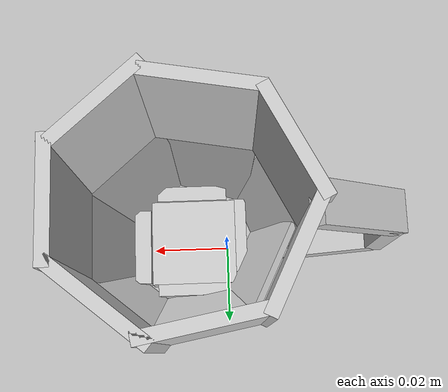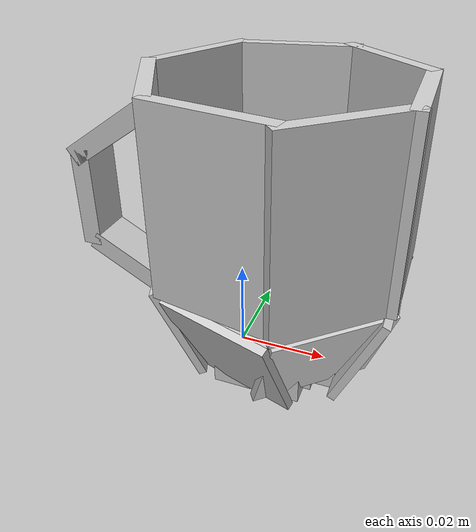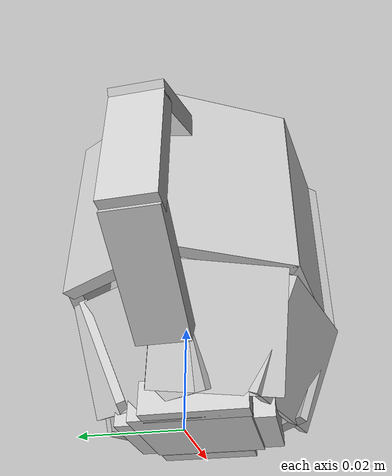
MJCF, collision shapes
<mujoco model="porcelain_mug_small">
  <asset>
  <texture file="porcelain_mug_texture.png" name="tex-porcelain_mug" type="2d" />
  <material name="porcelain_mug" reflectance="0.5" texrepeat="1 1" texture="tex-porcelain_mug" texuniform="false" />
  <mesh file="visual/porcelain_mug_vis.msh" name="porcelain_mug_vis" scale="0.6 0.6 0.6" /></asset>
  <worldbody>
    <body>
      <body name="object">
      <geom solimp="0.998 0.998 0.001" solref="0.001 1" density="100" friction="0.95 0.3 0.1" type="mesh" mesh="porcelain_mug_vis" conaffinity="0" contype="0" group="1" material="porcelain_mug" /><geom solimp="0.998 0.998 0.001" solref="0.001 1" density="100" friction="0.95 0.3 0.1" type="box" pos="-0.03572 -0.00000 0.03361" quat="0.00000 0.00000 1.00000 0.00000" size="0.00226 0.00478 0.01185" group="0" rgba="0.8 0.8 0.8 0.3" /><geom solimp="0.998 0.998 0.001" solref="0.001 1" density="100" friction="0.95 0.3 0.1" type="box" pos="-0.02495 0.00000 0.01717" quat="0.50997 -0.00000 0.86019 -0.00000" size="0.00226 0.00478 0.01185" group="0" rgba="0.8 0.8 0.8 0.3" /><geom solimp="0.998 0.998 0.001" solref="0.001 1" density="100" friction="0.95 0.3 0.1" type="box" pos="-0.02778 -0.00000 0.05005" quat="0.46390 0.00000 -0.88589 0.00000" size="0.00226 0.00478 0.01185" group="0" rgba="0.8 0.8 0.8 0.3" /><geom solimp="0.998 0.998 0.001" solref="0.001 1" density="100" friction="0.95 0.3 0.1" type="box" pos="0.03407 -0.00088 0.04551" quat="0.00000 0.00000 1.00000 0.00000" size="0.00146 0.01298 0.01957" group="0" rgba="0.8 0.8 0.8 0.3" /><geom solimp="0.998 0.998 0.001" solref="0.001 1" density="100" friction="0.95 0.3 0.1" type="box" pos="0.00886 -0.00098 0.00456" quat="0.50000 -0.50000 0.50000 0.50000" size="0.00313 0.01116 0.01116" group="0" rgba="0.8 0.8 0.8 0.3" /><geom solimp="0.998 0.998 0.001" solref="0.001 1" density="100" friction="0.95 0.3 0.1" type="box" pos="0.02961 -0.00242 0.01434" quat="0.69215 0.69215 0.14468 -0.14468" size="0.00085 0.01133 0.01298" group="0" rgba="0.8 0.8 0.8 0.3" /><geom solimp="0.998 0.998 0.001" solref="0.001 1" density="100" friction="0.95 0.3 0.1" type="box" pos="0.02347 0.01466 0.01434" quat="0.68797 0.56492 0.42528 0.16339" size="0.00079 0.01120 0.01145" group="0" rgba="0.8 0.8 0.8 0.3" /><geom solimp="0.998 0.998 0.001" solref="0.001 1" density="100" friction="0.95 0.3 0.1" type="box" pos="0.02452 0.01871 0.04551" quat="0.00000 -0.42525 0.90508 0.00000" size="0.00146 0.01298 0.01957" group="0" rgba="0.8 0.8 0.8 0.3" /><geom solimp="0.998 0.998 0.001" solref="0.001 1" density="100" friction="0.95 0.3 0.1" type="box" pos="0.00527 0.02321 0.04551" quat="0.00000 -0.76965 0.63846 0.00000" size="0.00146 0.01298 0.01957" group="0" rgba="0.8 0.8 0.8 0.3" /><geom solimp="0.998 0.998 0.001" solref="0.001 1" density="100" friction="0.95 0.3 0.1" type="box" pos="0.00641 0.01720 0.01434" quat="0.55326 0.33057 0.62508 0.44034" size="0.00085 0.01133 0.01298" group="0" rgba="0.8 0.8 0.8 0.3" /><geom solimp="0.998 0.998 0.001" solref="0.001 1" density="100" friction="0.95 0.3 0.1" type="box" pos="-0.00683 0.00763 0.01434" quat="0.01588 -0.29770 -0.64138 0.70693" size="0.00085 0.01133 0.01298" group="0" rgba="0.8 0.8 0.8 0.3" /><geom solimp="0.998 0.998 0.001" solref="0.001 1" density="100" friction="0.95 0.3 0.1" type="box" pos="-0.01315 0.01072 0.04551" quat="0.00000 -0.97400 0.22653 0.00000" size="0.00146 0.01298 0.01957" group="0" rgba="0.8 0.8 0.8 0.3" /><geom solimp="0.998 0.998 0.001" solref="0.001 1" density="100" friction="0.95 0.3 0.1" type="box" pos="-0.01372 -0.01082 0.04551" quat="0.00000 -0.23315 0.97244 0.00000" size="0.00146 0.01298 0.01957" group="0" rgba="0.8 0.8 0.8 0.3" /><geom solimp="0.998 0.998 0.001" solref="0.001 1" density="100" friction="0.95 0.3 0.1" type="box" pos="-0.01049 -0.00825 0.01434" quat="0.02182 -0.26310 0.65634 0.70677" size="0.00084 0.01132 0.01195" group="0" rgba="0.8 0.8 0.8 0.3" /><geom solimp="0.998 0.998 0.001" solref="0.001 1" density="100" friction="0.95 0.3 0.1" type="box" pos="0.00496 -0.02099 0.01434" quat="0.52881 -0.29653 0.64193 -0.46942" size="0.00085 0.01133 0.01241" group="0" rgba="0.8 0.8 0.8 0.3" /><geom solimp="0.998 0.998 0.001" solref="0.001 1" density="100" friction="0.95 0.3 0.1" type="box" pos="0.00388 -0.02396 0.04551" quat="-0.00000 -0.76567 -0.64323 -0.00000" size="0.00146 0.01298 0.01957" group="0" rgba="0.8 0.8 0.8 0.3" /><geom solimp="0.998 0.998 0.001" solref="0.001 1" density="100" friction="0.95 0.3 0.1" type="box" pos="0.02503 -0.01948 0.04551" quat="0.00000 0.41049 0.91187 0.00000" size="0.00146 0.01298 0.01957" group="0" rgba="0.8 0.8 0.8 0.3" /><geom solimp="0.998 0.998 0.001" solref="0.001 1" density="100" friction="0.95 0.3 0.1" type="box" pos="0.02274 -0.01549 0.01434" quat="0.69053 -0.57176 0.41604 -0.15219" size="0.00085 0.01133 0.01298" group="0" rgba="0.8 0.8 0.8 0.3" /><geom solimp="0.998 0.998 0.001" solref="0.001 1" density="100" friction="0.95 0.3 0.1" type="box" pos="0.00917 -0.01435 0.00456" quat="0.50000 0.50000 -0.50000 -0.50000" size="0.00196 0.00313 0.00932" group="0" rgba="0.8 0.8 0.8 0.3" /><geom solimp="0.998 0.998 0.001" solref="0.001 1" density="100" friction="0.95 0.3 0.1" type="box" pos="0.02249 -0.00010 0.00456" quat="0.70711 0.70711 0.00000 -0.00000" size="0.00216 0.00313 0.00986" group="0" rgba="0.8 0.8 0.8 0.3" /><geom solimp="0.998 0.998 0.001" solref="0.001 1" density="100" friction="0.95 0.3 0.1" type="box" pos="-0.00314 -0.00253 0.00456" quat="0.70711 0.70711 0.00000 -0.00000" size="0.00216 0.00313 0.00986" group="0" rgba="0.8 0.8 0.8 0.3" /><geom solimp="0.998 0.998 0.001" solref="0.001 1" density="100" friction="0.95 0.3 0.1" type="box" pos="0.00917 0.01132 0.00456" quat="0.50000 0.50000 -0.50000 -0.50000" size="0.00196 0.00313 0.00932" group="0" rgba="0.8 0.8 0.8 0.3" /></body>
      <site rgba="0 0 0 0" size="0.00300" pos="0.00000 0.00000 -0.03600" name="bottom_site" />
      <site rgba="0 0 0 0" size="0.00300" pos="0.00000 0.00000 0.02400" name="top_site" />
      <!-- robosuite placement uses only site pos[0] as XY radius; was 0.025 (too small → overlapping spawns). -->
      <site rgba="0 0 0 0" size="0.00300" pos="0.04800 0.04800 0.00000" name="horizontal_radius_site" />
    </body>
  </worldbody>
</mujoco>
